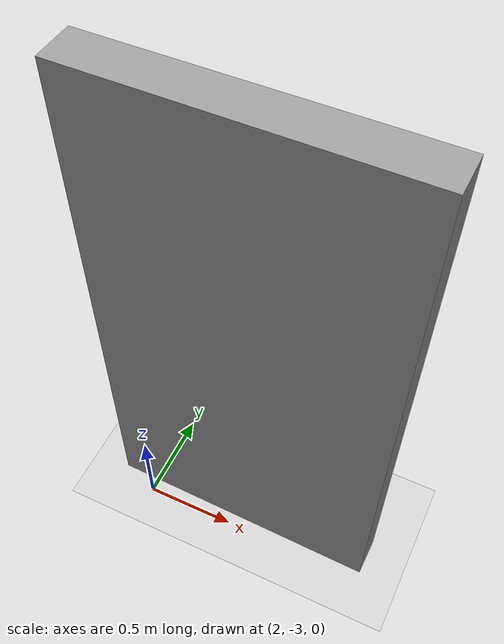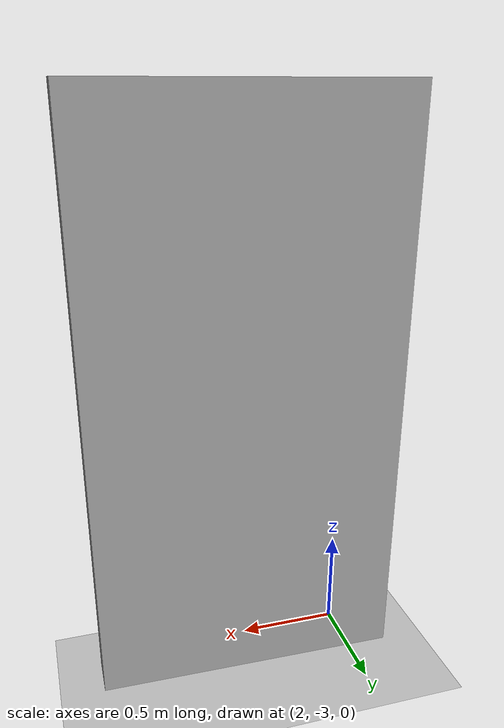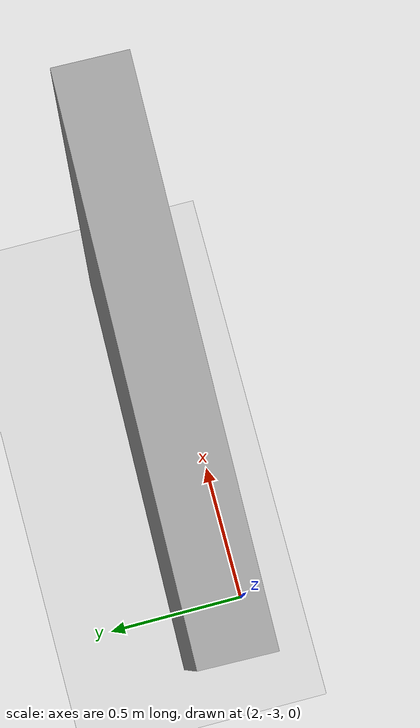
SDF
<sdf version="1.7">
 <world name="default">
  <model name="ground_plane">
   <static>1</static>
   <link name="link">
    <collision name="collision">
     <geometry><plane><normal>0 0 1</normal><size>100 100</size></plane></geometry>
     <surface>
      <contact><collide_bitmask>65535</collide_bitmask></contact>
      <friction><ode><mu>100</mu><mu2>50</mu2></ode></friction>
     </surface>
    </collision>
    <visual name="visual">
     <cast_shadows>0</cast_shadows>
     <geometry><plane><normal>0 0 1</normal><size>100 100</size></plane></geometry>
     <material>
      <script><uri>file://media/materials/scripts/gazebo.material</uri><name>Gazebo/Grey</name></script>
     </material>
    </visual>
   </link>
  </model>
  <model name="grey_wall_clone_0_clone_clone_clone_clone_0">
   <link name="link">
    <pose>0 0 1.4 0 -0 0</pose>
    <inertial>
     <mass>1</mass>
     <inertia><ixx>1</ixx><ixy>0</ixy><ixz>0</ixz><iyy>1</iyy><iyz>0</iyz><izz>1</izz></inertia>
    </inertial>
    <visual name="visual">
     <cast_shadows>0</cast_shadows>
     <geometry><box><size>1.5 0.2 2.8</size></box></geometry>
     <material>
      <script>
       <uri>https://fuel.ignitionrobotics.org/1.0/OpenRobotics/models/Grey Wall/2/files/materials/scripts</uri>
       <uri>https://fuel.ignitionrobotics.org/1.0/OpenRobotics/models/Grey Wall/2/files/materials/textures</uri>
       <name>vrc/grey_wall</name>
      </script>
      <shader type="pixel"><normal_map>__default__</normal_map></shader>
      <ambient>1 1 1 1</ambient>
      <diffuse>1 1 1 1</diffuse>
      <specular>0 0 0 1</specular>
      <emissive>0 0 0 1</emissive>
     </material>
    </visual>
    <collision name="collision">
     <geometry><box><size>7.5 0.2 2.8</size></box></geometry>
     <surface>
      <friction>
       <ode><mu>1</mu><mu2>1</mu2><fdir1>0 0 0</fdir1><slip1>0</slip1><slip2>0</slip2></ode>
       <torsional>
        <coefficient>1</coefficient>
        <patch_radius>0</patch_radius>
        <surface_radius>0</surface_radius>
        <use_patch_radius>1</use_patch_radius>
        <ode><slip>0</slip></ode>
       </torsional>
      </friction>
      <bounce><restitution_coefficient>0</restitution_coefficient><threshold>1e+06</threshold></bounce>
      <contact>
       <collide_without_contact>0</collide_without_contact>
       <collide_without_contact_bitmask>1</collide_without_contact_bitmask>
       <collide_bitmask>1</collide_bitmask>
       <ode>
        <soft_cfm>0</soft_cfm>
        <soft_erp>0.2</soft_erp>
        <kp>1e+13</kp>
        <kd>1</kd>
        <max_vel>0.01</max_vel>
        <min_depth>0</min_depth>
       </ode>
       <bullet>
        <split_impulse>1</split_impulse>
        <split_impulse_penetration_threshold>-0.01</split_impulse_penetration_threshold>
        <soft_cfm>0</soft_cfm>
        <soft_erp>0.2</soft_erp>
        <kp>1e+13</kp>
        <kd>1</kd>
       </bullet>
      </contact>
     </surface>
    </collision>
   </link>
   <static>1</static>
   <pose>2.5416 -2.84142 0.00615 0 0 -0.018951</pose>
  </model>
 </world>
</sdf>
